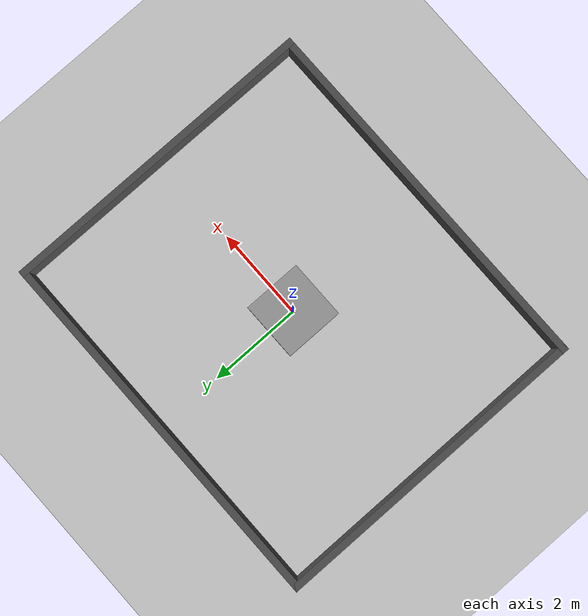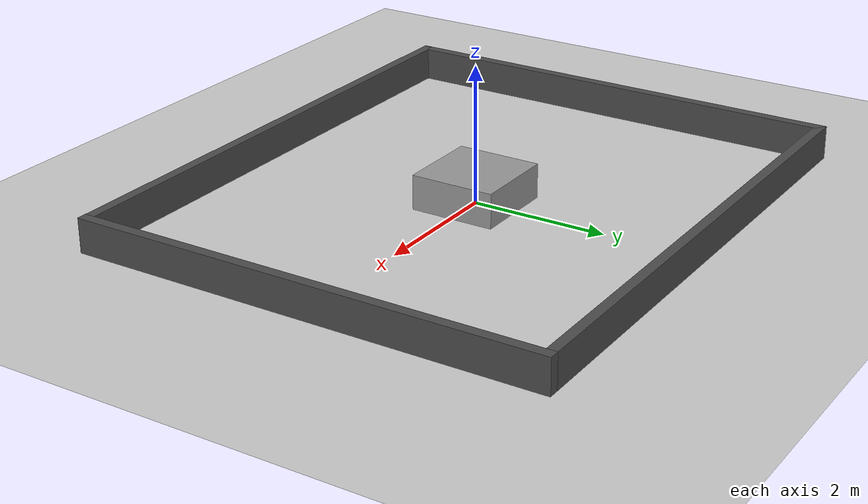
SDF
<sdf version="1.4">
  <world name="default">
    <scene>
      <ambient>0.8 0.8 0.8 1</ambient>
      <background>0.7 0.7 0.7 1</background>
      <shadows>true</shadows>
    </scene>

  <!-- A global light source  -->
    <include>
      <uri>model://sun</uri>
      <pose> -1.0 2.0 1.0 0 0 0</pose>
    </include>

  <!-- Piso da sala - circuito  e Paredes da Sala -->
    <include>
      <uri>model://ground_plane</uri> <!-- Piso plano sem nada - padrao do gazebo -->
    </include>
    <include>
      <uri>model://Walls/paredes_sala</uri>
      <pose> 4 0 0 0 0 0</pose>
    </include>

  <!-- caixa - ja foi usada como visivel e invisivel. Para invisivel basta editar o modelo de caixa e tirar o visible -->
    <include>
      <uri>model://Boxes/caixa</uri>
      <pose> 0 0 0 0 0 0</pose>
    </include>

    <physics type="ode">
      <real_time_update_rate>1000.0</real_time_update_rate>
      <max_step_size>0.001</max_step_size>
      <real_time_factor>1</real_time_factor>
      <ode>
        <solver>
          <type>quick</type>
          <iters>150</iters>
          <precon_iters>0</precon_iters>
          <sor>1.400000</sor>
          <use_dynamic_moi_rescaling>1</use_dynamic_moi_rescaling>
        </solver>
        <constraints>
          <cfm>0.00001</cfm>
          <erp>0.2</erp>
          <contact_max_correcting_vel>2000.000000</contact_max_correcting_vel>
          <contact_surface_layer>0.01000</contact_surface_layer>
        </constraints>
      </ode>
    </physics>

    <gui fullscreen='0'>
      <camera name='user_camera'>
        <pose frame=''>0.238775 -6.8831 10.8485 -0 0.979642 1.5602</pose>
        <view_controller>orbit</view_controller>
        <projection_type>perspective</projection_type>
      </camera>
    </gui>

  </world>

</sdf>

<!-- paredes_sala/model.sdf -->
<sdf version='1.7'>
  <model name='parede'>
    <link name='Wall_0'>
      <pose>-4.075 -3.425 0.25 0 0 0</pose>
      <self_collide>0</self_collide>
      <enable_wind>0</enable_wind>
      <kinematic>0</kinematic>
      <visual name='Wall_0_Visual'>
        <geometry>
          <box>
            <size>8 0.15 0.5</size>
          </box>
        </geometry>
        <material>
          <script>
            <uri>file://media/materials/scripts/gazebo.material</uri>
            <name>Gazebo/DarkGrey</name>
          </script>
          <ambient>0.5 0.5 0.5 1</ambient>
          <diffuse>1 1 1 1</diffuse>
          <specular>0.2 0.2 0.2 1</specular>
          <emissive>0 0 0 1</emissive>
          <shader type='pixel'/>
        </material>
      </visual>
      <collision name='Wall_0_Collision'>
        <laser_retro>0</laser_retro>
        <max_contacts>10</max_contacts>
        <geometry>
          <box>
            <size>8 0.15 0.5</size>
          </box>
        </geometry>
        <surface>
          <friction>
            <ode>
              <mu>1</mu>
              <mu2>1</mu2>
              <fdir1>0 0 0</fdir1>
              <slip1>0</slip1>
              <slip2>0</slip2>
            </ode>
            <torsional>
              <coefficient>1</coefficient>
              <patch_radius>0</patch_radius>
              <surface_radius>0</surface_radius>
              <use_patch_radius>1</use_patch_radius>
              <ode>
                <slip>0</slip>
              </ode>
            </torsional>
          </friction>
          <bounce>
            <restitution_coefficient>0</restitution_coefficient>
            <threshold>1e+06</threshold>
          </bounce>
          <contact>
            <collide_without_contact>0</collide_without_contact>
            <collide_without_contact_bitmask>1</collide_without_contact_bitmask>
            <collide_bitmask>1</collide_bitmask>
            <ode>
              <soft_cfm>0</soft_cfm>
              <soft_erp>0.2</soft_erp>
              <kp>1e+13</kp>
              <kd>1</kd>
              <max_vel>0.01</max_vel>
              <min_depth>0</min_depth>
            </ode>
            <bullet>
              <split_impulse>1</split_impulse>
              <split_impulse_penetration_threshold>-0.01</split_impulse_penetration_threshold>
              <soft_cfm>0</soft_cfm>
              <soft_erp>0.2</soft_erp>
              <kp>1e+13</kp>
              <kd>1</kd>
            </bullet>
          </contact>
        </surface>
      </collision>
    </link>
    <link name='Wall_1'>
      <pose>0 0 0.25 0 0 0</pose>
      <self_collide>0</self_collide>
      <kinematic>0</kinematic>
      <visual name='Wall_1_Visual'>
        <geometry>
          <box>
            <size>0.15 7 0.5</size>
          </box>
        </geometry>
        <material>
          <script>
            <uri>file://media/materials/scripts/gazebo.material</uri>
            <name>Gazebo/DarkGrey</name>
          </script>
          <ambient>0.5 0.5 0.5 1</ambient>
          <diffuse>1 1 1 1</diffuse>
          <specular>0.2 0.2 0.2 1</specular>
          <emissive>0 0 0 1</emissive>
        </material>
        <transparency>0</transparency>
        <cast_shadows>1</cast_shadows>
      </visual>
      <collision name='Wall_1_Collision'>
        <laser_retro>0</laser_retro>
        <max_contacts>10</max_contacts>
        <geometry>
          <box>
            <size>0.15 7 0.5</size>
          </box>
        </geometry>
        <surface>
          <friction>
            <ode>
              <mu>1</mu>
              <mu2>1</mu2>
              <fdir1>0 0 0</fdir1>
              <slip1>0</slip1>
              <slip2>0</slip2>
            </ode>
            <torsional>
              <coefficient>1</coefficient>
              <patch_radius>0</patch_radius>
              <surface_radius>0</surface_radius>
              <use_patch_radius>1</use_patch_radius>
              <ode>
                <slip>0</slip>
              </ode>
            </torsional>
          </friction>
          <bounce>
            <restitution_coefficient>0</restitution_coefficient>
            <threshold>1e+06</threshold>
          </bounce>
          <contact>
            <collide_without_contact>0</collide_without_contact>
            <collide_without_contact_bitmask>1</collide_without_contact_bitmask>
            <ode>
              <soft_cfm>0</soft_cfm>
              <soft_erp>0.2</soft_erp>
              <kp>1e+13</kp>
              <kd>1</kd>
              <max_vel>0.01</max_vel>
              <min_depth>0</min_depth>
            </ode>
            <bullet>
              <split_impulse>1</split_impulse>
              <split_impulse_penetration_threshold>-0.01</split_impulse_penetration_threshold>
              <soft_cfm>0</soft_cfm>
              <soft_erp>0.2</soft_erp>
              <kp>1e+13</kp>
              <kd>1</kd>
            </bullet>
          </contact>
        </surface>
      </collision>
    </link>
    <link name='Wall_2'>
      <pose>-8 0 0.25 0 0 0 0</pose>
      <self_collide>0</self_collide>
      <enable_wind>0</enable_wind>
      <kinematic>0</kinematic>
      <visual name='Wall_2_Visual'>
        <geometry>
          <box>
            <size>0.15 7 0.5</size>
          </box>
        </geometry>
        <material>
          <script>
            <uri>file://media/materials/scripts/gazebo.material</uri>
            <name>Gazebo/DarkGrey</name>
          </script>
          <ambient>0.5 0.5 0.5 1</ambient>
          <diffuse>1 1 1 1</diffuse>
          <specular>0.2 0.2 0.2 1</specular>
          <emissive>0 0 0 1</emissive>
          <shader type='pixel'/>
        </material>
        <meta>
          <layer>0</layer>
        </meta>
        <transparency>0</transparency>
        <cast_shadows>1</cast_shadows>
      </visual>
      <collision name='Wall_2_Collision'>
        <laser_retro>0</laser_retro>
        <max_contacts>10</max_contacts>
        <geometry>
          <box>
            <size>0.15 7 0.5</size>
          </box>
        </geometry>
        <surface>
          <friction>
            <ode>
              <mu>1</mu>
              <mu2>1</mu2>
              <fdir1>0 0 0</fdir1>
              <slip1>0</slip1>
              <slip2>0</slip2>
            </ode>
            <torsional>
              <coefficient>1</coefficient>
              <patch_radius>0</patch_radius>
              <surface_radius>0</surface_radius>
              <use_patch_radius>1</use_patch_radius>
              <ode>
                <slip>0</slip>
              </ode>
            </torsional>
          </friction>
          <bounce>
            <restitution_coefficient>0</restitution_coefficient>
            <threshold>1e+06</threshold>
          </bounce>
          <contact>
            <collide_without_contact>0</collide_without_contact>
            <collide_without_contact_bitmask>1</collide_without_contact_bitmask>
            <collide_bitmask>1</collide_bitmask>
            <ode>
              <soft_cfm>0</soft_cfm>
              <soft_erp>0.2</soft_erp>
              <kp>1e+13</kp>
              <kd>1</kd>
              <max_vel>0.01</max_vel>
              <min_depth>0</min_depth>
            </ode>
            <bullet>
              <split_impulse>1</split_impulse>
              <split_impulse_penetration_threshold>-0.01</split_impulse_penetration_threshold>
              <soft_cfm>0</soft_cfm>
              <soft_erp>0.2</soft_erp>
              <kp>1e+13</kp>
              <kd>1</kd>
            </bullet>
          </contact>
        </surface>
      </collision>
    </link>
    <link name='Wall_3'>
      <pose>-4.075 3.425 0.25 0 0 0</pose>
      <self_collide>0</self_collide>
      <enable_wind>0</enable_wind>
      <kinematic>0</kinematic>
      <visual name='Wall_3_Visual'>
        <geometry>
          <box>
            <size>8 0.15 0.5</size>
          </box>
        </geometry>
        <material>
          <script>
            <uri>file://media/materials/scripts/gazebo.material</uri>
            <name>Gazebo/DarkGrey</name>
          </script>
          <ambient>0.5 0.5 0.5 1</ambient>
          <diffuse>1 1 1 1</diffuse>
          <specular>0.2 0.2 0.2 1</specular>
          <emissive>0 0 0 1</emissive>
          <shader type='pixel'/>
        </material>
        <meta>
          <layer>0</layer>
        </meta>
        <transparency>0</transparency>
        <cast_shadows>1</cast_shadows>
      </visual>
      <collision name='Wall_3_Collision'>
        <laser_retro>0</laser_retro>
        <max_contacts>10</max_contacts>
        <geometry>
          <box>
            <size>8 0.15 0.5</size>
          </box>
        </geometry>
        <surface>
          <friction>
            <ode>
              <mu>1</mu>
              <mu2>1</mu2>
              <fdir1>0 0 0</fdir1>
              <slip1>0</slip1>
              <slip2>0</slip2>
            </ode>
            <torsional>
              <coefficient>1</coefficient>
              <patch_radius>0</patch_radius>
              <surface_radius>0</surface_radius>
              <use_patch_radius>1</use_patch_radius>
              <ode>
                <slip>0</slip>
              </ode>
            </torsional>
          </friction>
          <bounce>
            <restitution_coefficient>0</restitution_coefficient>
            <threshold>1e+06</threshold>
          </bounce>
          <contact>
            <collide_without_contact>0</collide_without_contact>
            <collide_without_contact_bitmask>1</collide_without_contact_bitmask>
            <collide_bitmask>1</collide_bitmask>
            <ode>
              <soft_cfm>0</soft_cfm>
              <soft_erp>0.2</soft_erp>
              <kp>1e+13</kp>
              <kd>1</kd>
              <max_vel>0.01</max_vel>
              <min_depth>0</min_depth>
            </ode>
            <bullet>
              <split_impulse>1</split_impulse>
              <split_impulse_penetration_threshold>-0.01</split_impulse_penetration_threshold>
              <soft_cfm>0</soft_cfm>
              <soft_erp>0.2</soft_erp>
              <kp>1e+13</kp>
              <kd>1</kd>
            </bullet>
          </contact>
        </surface>
      </collision>
    </link>
    <static>1</static>
    <allow_auto_disable>1</allow_auto_disable>
  </model>
</sdf>

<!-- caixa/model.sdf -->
<sdf version='1.6'>
  <model name='caixa'>
    <link name='link'>
      <inertial>
        <mass>1</mass>
        <inertia>
          <ixx>0.166667</ixx>
          <ixy>0</ixy>
          <ixz>0</ixz>
          <iyy>0.166667</iyy>
          <iyz>0</iyz>
          <izz>0.166667</izz>
        </inertia>
        <pose frame=''>0 0 0 0 0 0</pose>
      </inertial>
      <self_collide>0</self_collide>
      <enable_wind>0</enable_wind>
      <kinematic>0</kinematic>
      <pose frame=''>0 0 0 0 0 0</pose>
      <gravity>1</gravity>
      <visual name='visual'>
        <geometry>
          <box>
            <size>1.25 1.25 1</size>
          </box>
        </geometry>
        <material>
          <script>
            <name>Gazebo/Grey</name>
            <uri>file://media/materials/scripts/gazebo.material</uri>
          </script>
          <shader type='vertex'>
            <normal_map>__default__</normal_map>
          </shader>
          <ambient>0.4 0.4 0.4 1</ambient>
        </material>
        <pose frame=''>0 0 0 0 -0 0</pose>
        <transparency>0</transparency>
        <cast_shadows>1</cast_shadows>
      </visual>
      <!-- atributos existenciais da caixa - inicialmente tem 1m x 1m x 1m -->
      <collision name='collision'>
        <laser_retro>0</laser_retro>
        <max_contacts>10</max_contacts>
        <pose frame=''>0 0 0 0 -0 0</pose>
        <geometry>
          <box>
            <size>1.25 1.25 1</size>
          </box>
        </geometry>
        <surface>
          <friction>
            <ode>
              <mu>1</mu>
              <mu2>1</mu2>
              <fdir1>0 0 0</fdir1>
              <slip1>0</slip1>
              <slip2>0</slip2>
            </ode>
            <torsional>
              <coefficient>1</coefficient>
              <patch_radius>0</patch_radius>
              <surface_radius>0</surface_radius>
              <use_patch_radius>1</use_patch_radius>
              <ode>
                <slip>0</slip>
              </ode>
            </torsional>
          </friction>
          <bounce>
            <restitution_coefficient>0</restitution_coefficient>
            <threshold>1e+06</threshold>
          </bounce>
          <contact>
            <collide_without_contact>0</collide_without_contact>
            <collide_without_contact_bitmask>1</collide_without_contact_bitmask>
            <collide_bitmask>1</collide_bitmask>
            <ode>
              <soft_cfm>0</soft_cfm>
              <soft_erp>0.2</soft_erp>
              <kp>1e+13</kp>
              <kd>1</kd>
              <max_vel>0.01</max_vel>
              <min_depth>0</min_depth>
            </ode>
            <bullet>
              <split_impulse>1</split_impulse>
              <split_impulse_penetration_threshold>-0.01</split_impulse_penetration_threshold>
              <soft_cfm>0</soft_cfm>
              <soft_erp>0.2</soft_erp>
              <kp>1e+13</kp>
              <kd>1</kd>
            </bullet>
          </contact>
        </surface>
      </collision>
    </link>
    <static>0</static>
    <allow_auto_disable>1</allow_auto_disable>
  </model>
</sdf>
